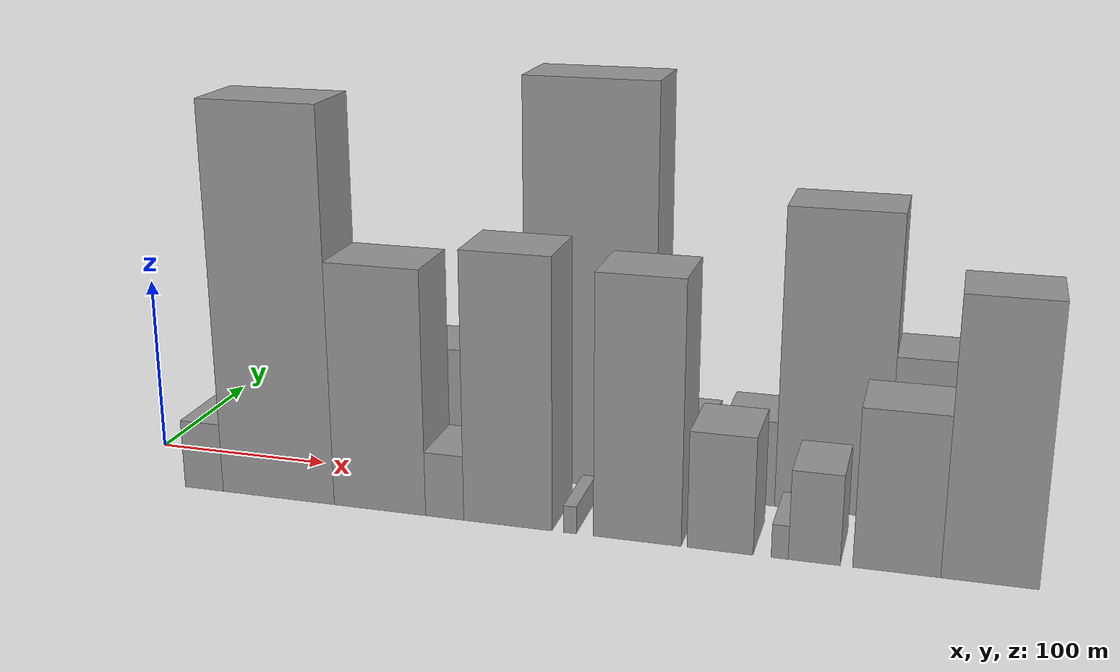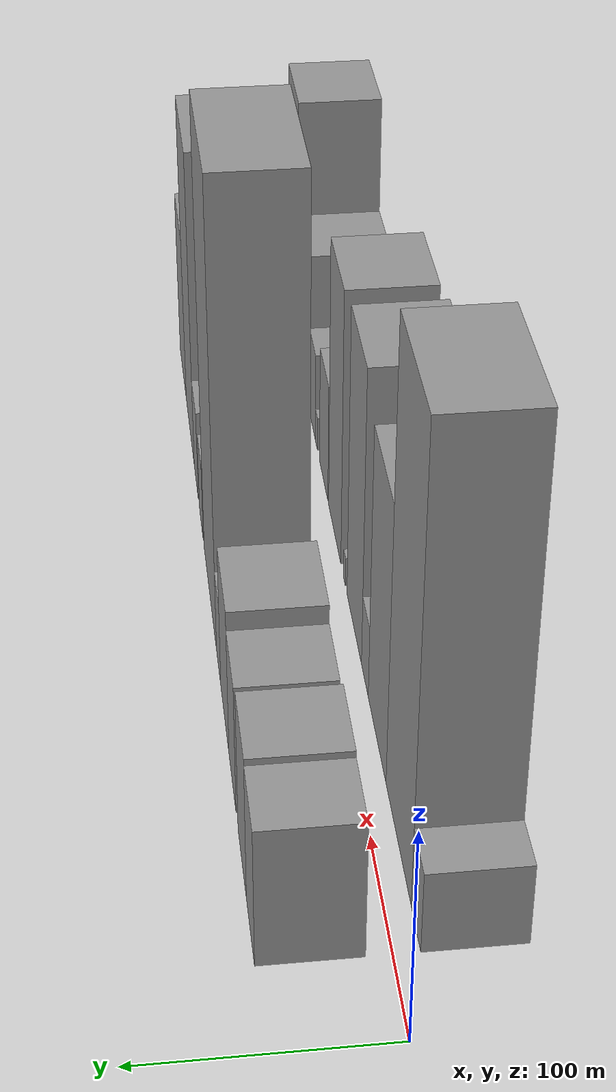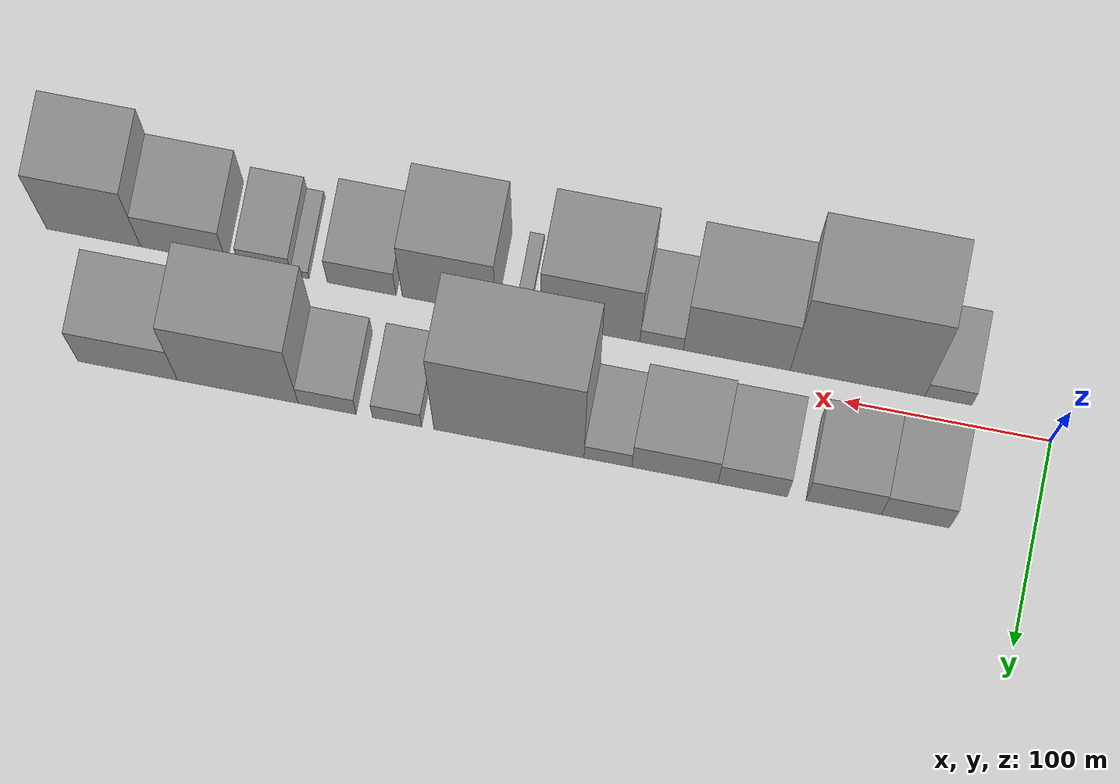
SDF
<sdf version="1.6">
 <world name="default">
  <scene>
   <sky><clouds><speed>12</speed></clouds></sky>
   <ambient>0.4 0.4 0.4 1</ambient>
   <background>0.7 0.7 0.7 1</background>
   <shadows>1</shadows>
  </scene>
  <gravity>0 0 -9.8066</gravity>
  <magnetic_field>6e-06 2.3e-05 -4.2e-05</magnetic_field>
  <physics default="0" name="default_physics" type="ode">
   <ode>
    <solver>
     <type>quick</type>
     <iters>10</iters>
     <sor>1.0</sor>
     <use_dynamic_moi_rescaling>0</use_dynamic_moi_rescaling>
    </solver>
    <constraints>
     <cfm>0</cfm>
     <erp>0.2</erp>
     <contact_max_correcting_vel>100</contact_max_correcting_vel>
     <contact_surface_layer>0.001</contact_surface_layer>
    </constraints>
   </ode>
   <max_step_size>0.004</max_step_size>
   <real_time_factor>1</real_time_factor>
   <real_time_update_rate>250</real_time_update_rate>
  </physics>
  <light name="sun" type="directional">
   <pose>0 0 10 0 0 0</pose>
   <diffuse>0.8 0.8 0.8 1</diffuse>
   <specular>0.2 0.2 0.2 1</specular>
   <attenuation>
    <range>1000</range>
    <constant>0.9</constant>
    <linear>0.01</linear>
    <quadratic>0.001</quadratic>
   </attenuation>
   <direction>-0.5 0.1 -0.9</direction>
  </light>
  <model name="building_1">
   <static>1</static>
   <pose>56.5214 30.0000 0 0.000000 0.000000 1.570796</pose>
   <link name="link">
    <pose>0 0 33.00 0 0 0</pose>
    <collision name="collision"><geometry><box><size>40.0000 33.0428 66.0000</size></box></geometry></collision>
    <visual name="visual">
     <cast_shadows>0</cast_shadows>
     <geometry><box><size>40.0000 33.0428 66.0000</size></box></geometry>
     <material>
      <script>
       <uri>model://grey_wall/materials/scripts</uri>
       <uri>model://grey_wall/materials/textures</uri>
       <name>vrc/grey_wall</name>
      </script>
     </material>
    </visual>
   </link>
  </model>
  <model name="building_2">
   <static>1</static>
   <pose>91.2987 30.0000 0 0.000000 0.000000 1.570796</pose>
   <link name="link">
    <pose>0 0 34.50 0 0 0</pose>
    <collision name="collision"><geometry><box><size>40.0000 36.5118 69.0000</size></box></geometry></collision>
    <visual name="visual">
     <cast_shadows>0</cast_shadows>
     <geometry><box><size>40.0000 36.5118 69.0000</size></box></geometry>
     <material>
      <script>
       <uri>model://grey_wall/materials/scripts</uri>
       <uri>model://grey_wall/materials/textures</uri>
       <name>vrc/grey_wall</name>
      </script>
     </material>
    </visual>
   </link>
  </model>
  <model name="building_3">
   <static>1</static>
   <pose>135.4529 30.0000 0 0.000000 0.000000 1.570796</pose>
   <link name="link">
    <pose>0 0 31.50 0 0 0</pose>
    <collision name="collision"><geometry><box><size>40.0000 33.7965 63.0000</size></box></geometry></collision>
    <visual name="visual">
     <cast_shadows>0</cast_shadows>
     <geometry><box><size>40.0000 33.7965 63.0000</size></box></geometry>
     <material>
      <script>
       <uri>model://grey_wall/materials/scripts</uri>
       <uri>model://grey_wall/materials/textures</uri>
       <name>vrc/grey_wall</name>
      </script>
     </material>
    </visual>
   </link>
  </model>
  <model name="building_4">
   <static>1</static>
   <pose>173.2108 30.0000 0 0.000000 0.000000 1.570796</pose>
   <link name="link">
    <pose>0 0 36.00 0 0 0</pose>
    <collision name="collision"><geometry><box><size>40.0000 41.7194 72.0000</size></box></geometry></collision>
    <visual name="visual">
     <cast_shadows>0</cast_shadows>
     <geometry><box><size>40.0000 41.7194 72.0000</size></box></geometry>
     <material>
      <script>
       <uri>model://grey_wall/materials/scripts</uri>
       <uri>model://grey_wall/materials/textures</uri>
       <name>vrc/grey_wall</name>
      </script>
     </material>
    </visual>
   </link>
  </model>
  <model name="building_5">
   <static>1</static>
   <pose>205.6619 30.0000 0 0.000000 0.000000 1.570796</pose>
   <link name="link">
    <pose>0 0 21.00 0 0 0</pose>
    <collision name="collision"><geometry><box><size>40.0000 23.1827 42.0000</size></box></geometry></collision>
    <visual name="visual">
     <cast_shadows>0</cast_shadows>
     <geometry><box><size>40.0000 23.1827 42.0000</size></box></geometry>
     <material>
      <script>
       <uri>model://grey_wall/materials/scripts</uri>
       <uri>model://grey_wall/materials/textures</uri>
       <name>vrc/grey_wall</name>
      </script>
     </material>
    </visual>
   </link>
  </model>
  <model name="building_6">
   <static>1</static>
   <pose>253.6952 30.0000 0 0.000000 0.000000 1.570796</pose>
   <link name="link">
    <pose>0 0 112.50 0 0 0</pose>
    <collision name="collision"><geometry><box><size>40.0000 72.8837 225.0000</size></box></geometry></collision>
    <visual name="visual">
     <cast_shadows>0</cast_shadows>
     <geometry><box><size>40.0000 72.8837 225.0000</size></box></geometry>
     <material>
      <script>
       <uri>model://grey_wall/materials/scripts</uri>
       <uri>model://grey_wall/materials/textures</uri>
       <name>vrc/grey_wall</name>
      </script>
     </material>
    </visual>
   </link>
  </model>
  <model name="building_7">
   <static>1</static>
   <pose>308.0705 30.0000 0 0.000000 0.000000 1.570796</pose>
   <link name="link">
    <pose>0 0 21.00 0 0 0</pose>
    <collision name="collision"><geometry><box><size>40.0000 23.8669 42.0000</size></box></geometry></collision>
    <visual name="visual">
     <cast_shadows>0</cast_shadows>
     <geometry><box><size>40.0000 23.8669 42.0000</size></box></geometry>
     <material>
      <script>
       <uri>model://grey_wall/materials/scripts</uri>
       <uri>model://grey_wall/materials/textures</uri>
       <name>vrc/grey_wall</name>
      </script>
     </material>
    </visual>
   </link>
  </model>
  <model name="building_8">
   <static>1</static>
   <pose>342.1135 30.0000 0 0.000000 0.000000 1.570796</pose>
   <link name="link">
    <pose>0 0 24.00 0 0 0</pose>
    <collision name="collision"><geometry><box><size>40.0000 28.2193 48.0000</size></box></geometry></collision>
    <visual name="visual">
     <cast_shadows>0</cast_shadows>
     <geometry><box><size>40.0000 28.2193 48.0000</size></box></geometry>
     <material>
      <script>
       <uri>model://grey_wall/materials/scripts</uri>
       <uri>model://grey_wall/materials/textures</uri>
       <name>vrc/grey_wall</name>
      </script>
     </material>
    </visual>
   </link>
  </model>
  <model name="building_9">
   <static>1</static>
   <pose>385.6318 30.0000 0 0.000000 0.000000 1.570796</pose>
   <link name="link">
    <pose>0 0 82.50 0 0 0</pose>
    <collision name="collision"><geometry><box><size>40.0000 58.8174 165.0000</size></box></geometry></collision>
    <visual name="visual">
     <cast_shadows>0</cast_shadows>
     <geometry><box><size>40.0000 58.8174 165.0000</size></box></geometry>
     <material>
      <script>
       <uri>model://grey_wall/materials/scripts</uri>
       <uri>model://grey_wall/materials/textures</uri>
       <name>vrc/grey_wall</name>
      </script>
     </material>
    </visual>
   </link>
  </model>
  <model name="building_10">
   <static>1</static>
   <pose>439.2634 30.0000 0 0.000000 0.000000 1.570796</pose>
   <link name="link">
    <pose>0 0 45.00 0 0 0</pose>
    <collision name="collision"><geometry><box><size>40.0000 48.4457 90.0000</size></box></geometry></collision>
    <visual name="visual">
     <cast_shadows>0</cast_shadows>
     <geometry><box><size>40.0000 48.4457 90.0000</size></box></geometry>
     <material>
      <script>
       <uri>model://grey_wall/materials/scripts</uri>
       <uri>model://grey_wall/materials/textures</uri>
       <name>vrc/grey_wall</name>
      </script>
     </material>
    </visual>
   </link>
  </model>
  <model name="building_11">
   <static>1</static>
   <pose>51.4563 -30.0000 0 0.000000 0.000000 1.570796</pose>
   <link name="link">
    <pose>0 0 19.50 0 0 0</pose>
    <collision name="collision"><geometry><box><size>40.0000 22.9126 39.0000</size></box></geometry></collision>
    <visual name="visual">
     <cast_shadows>0</cast_shadows>
     <geometry><box><size>40.0000 22.9126 39.0000</size></box></geometry>
     <material>
      <script>
       <uri>model://grey_wall/materials/scripts</uri>
       <uri>model://grey_wall/materials/textures</uri>
       <name>vrc/grey_wall</name>
      </script>
     </material>
    </visual>
   </link>
  </model>
  <model name="building_12">
   <static>1</static>
   <pose>95.6367 -30.0000 0 0.000000 0.000000 1.570796</pose>
   <link name="link">
    <pose>0 0 108.00 0 0 0</pose>
    <collision name="collision"><geometry><box><size>40.0000 65.4483 216.0000</size></box></geometry></collision>
    <visual name="visual">
     <cast_shadows>0</cast_shadows>
     <geometry><box><size>40.0000 65.4483 216.0000</size></box></geometry>
     <material>
      <script>
       <uri>model://grey_wall/materials/scripts</uri>
       <uri>model://grey_wall/materials/textures</uri>
       <name>vrc/grey_wall</name>
      </script>
     </material>
    </visual>
   </link>
  </model>
  <model name="building_13">
   <static>1</static>
   <pose>154.3303 -30.0000 0 0.000000 0.000000 1.570796</pose>
   <link name="link">
    <pose>0 0 67.50 0 0 0</pose>
    <collision name="collision"><geometry><box><size>40.0000 51.9388 135.0000</size></box></geometry></collision>
    <visual name="visual">
     <cast_shadows>0</cast_shadows>
     <geometry><box><size>40.0000 51.9388 135.0000</size></box></geometry>
     <material>
      <script>
       <uri>model://grey_wall/materials/scripts</uri>
       <uri>model://grey_wall/materials/textures</uri>
       <name>vrc/grey_wall</name>
      </script>
     </material>
    </visual>
   </link>
  </model>
  <model name="building_14">
   <static>1</static>
   <pose>190.9048 -30.0000 0 0.000000 0.000000 1.570796</pose>
   <link name="link">
    <pose>0 0 18.00 0 0 0</pose>
    <collision name="collision"><geometry><box><size>40.0000 21.2103 36.0000</size></box></geometry></collision>
    <visual name="visual">
     <cast_shadows>0</cast_shadows>
     <geometry><box><size>40.0000 21.2103 36.0000</size></box></geometry>
     <material>
      <script>
       <uri>model://grey_wall/materials/scripts</uri>
       <uri>model://grey_wall/materials/textures</uri>
       <name>vrc/grey_wall</name>
      </script>
     </material>
    </visual>
   </link>
  </model>
  <model name="building_15">
   <static>1</static>
   <pose>225.5655 -30.0000 0 0.000000 0.000000 1.570796</pose>
   <link name="link">
    <pose>0 0 73.50 0 0 0</pose>
    <collision name="collision"><geometry><box><size>40.0000 48.1112 147.0000</size></box></geometry></collision>
    <visual name="visual">
     <cast_shadows>0</cast_shadows>
     <geometry><box><size>40.0000 48.1112 147.0000</size></box></geometry>
     <material>
      <script>
       <uri>model://grey_wall/materials/scripts</uri>
       <uri>model://grey_wall/materials/textures</uri>
       <name>vrc/grey_wall</name>
      </script>
     </material>
    </visual>
   </link>
  </model>
  <model name="building_16">
   <static>1</static>
   <pose>259.0940 -30.0000 0 0.000000 0.000000 1.570796</pose>
   <link name="link">
    <pose>0 0 7.50 0 0 0</pose>
    <collision name="collision"><geometry><box><size>40.0000 6.9457 15.0000</size></box></geometry></collision>
    <visual name="visual">
     <cast_shadows>0</cast_shadows>
     <geometry><box><size>40.0000 6.9457 15.0000</size></box></geometry>
     <material>
      <script>
       <uri>model://grey_wall/materials/scripts</uri>
       <uri>model://grey_wall/materials/textures</uri>
       <name>vrc/grey_wall</name>
      </script>
     </material>
    </visual>
   </link>
  </model>
  <model name="building_17">
   <static>1</static>
   <pose>294.4549 -30.0000 0 0.000000 0.000000 1.570796</pose>
   <link name="link">
    <pose>0 0 70.50 0 0 0</pose>
    <collision name="collision"><geometry><box><size>40.0000 45.7761 141.0000</size></box></geometry></collision>
    <visual name="visual">
     <cast_shadows>0</cast_shadows>
     <geometry><box><size>40.0000 45.7761 141.0000</size></box></geometry>
     <material>
      <script>
       <uri>model://grey_wall/materials/scripts</uri>
       <uri>model://grey_wall/materials/textures</uri>
       <name>vrc/grey_wall</name>
      </script>
     </material>
    </visual>
   </link>
  </model>
  <model name="building_18">
   <static>1</static>
   <pose>337.1274 -30.0000 0 0.000000 0.000000 1.570796</pose>
   <link name="link">
    <pose>0 0 31.50 0 0 0</pose>
    <collision name="collision"><geometry><box><size>40.0000 33.5688 63.0000</size></box></geometry></collision>
    <visual name="visual">
     <cast_shadows>0</cast_shadows>
     <geometry><box><size>40.0000 33.5688 63.0000</size></box></geometry>
     <material>
      <script>
       <uri>model://grey_wall/materials/scripts</uri>
       <uri>model://grey_wall/materials/textures</uri>
       <name>vrc/grey_wall</name>
      </script>
     </material>
    </visual>
   </link>
  </model>
  <model name="building_19">
   <static>1</static>
   <pose>367.1387 -30.0000 0 0.000000 0.000000 1.570796</pose>
   <link name="link">
    <pose>0 0 9.00 0 0 0</pose>
    <collision name="collision"><geometry><box><size>40.0000 8.4537 18.0000</size></box></geometry></collision>
    <visual name="visual">
     <cast_shadows>0</cast_shadows>
     <geometry><box><size>40.0000 8.4537 18.0000</size></box></geometry>
     <material>
      <script>
       <uri>model://grey_wall/materials/scripts</uri>
       <uri>model://grey_wall/materials/textures</uri>
       <name>vrc/grey_wall</name>
      </script>
     </material>
    </visual>
   </link>
  </model>
  <model name="building_20">
   <static>1</static>
   <pose>384.1922 -30.0000 0 0.000000 0.000000 1.570796</pose>
   <link name="link">
    <pose>0 0 24.00 0 0 0</pose>
    <collision name="collision"><geometry><box><size>40.0000 25.6532 48.0000</size></box></geometry></collision>
    <visual name="visual">
     <cast_shadows>0</cast_shadows>
     <geometry><box><size>40.0000 25.6532 48.0000</size></box></geometry>
     <material>
      <script>
       <uri>model://grey_wall/materials/scripts</uri>
       <uri>model://grey_wall/materials/textures</uri>
       <name>vrc/grey_wall</name>
      </script>
     </material>
    </visual>
   </link>
  </model>
  <model name="building_21">
   <static>1</static>
   <pose>424.1243 -30.0000 0 0.000000 0.000000 1.570796</pose>
   <link name="link">
    <pose>0 0 42.00 0 0 0</pose>
    <collision name="collision"><geometry><box><size>40.0000 42.2110 84.0000</size></box></geometry></collision>
    <visual name="visual">
     <cast_shadows>0</cast_shadows>
     <geometry><box><size>40.0000 42.2110 84.0000</size></box></geometry>
     <material>
      <script>
       <uri>model://grey_wall/materials/scripts</uri>
       <uri>model://grey_wall/materials/textures</uri>
       <name>vrc/grey_wall</name>
      </script>
     </material>
    </visual>
   </link>
  </model>
  <model name="building_22">
   <static>1</static>
   <pose>468.2166 -30.0000 0 0.000000 0.000000 1.570796</pose>
   <link name="link">
    <pose>0 0 72.00 0 0 0</pose>
    <collision name="collision"><geometry><box><size>40.0000 45.9736 144.0000</size></box></geometry></collision>
    <visual name="visual">
     <cast_shadows>0</cast_shadows>
     <geometry><box><size>40.0000 45.9736 144.0000</size></box></geometry>
     <material>
      <script>
       <uri>model://grey_wall/materials/scripts</uri>
       <uri>model://grey_wall/materials/textures</uri>
       <name>vrc/grey_wall</name>
      </script>
     </material>
    </visual>
   </link>
  </model>
 </world>
</sdf>
